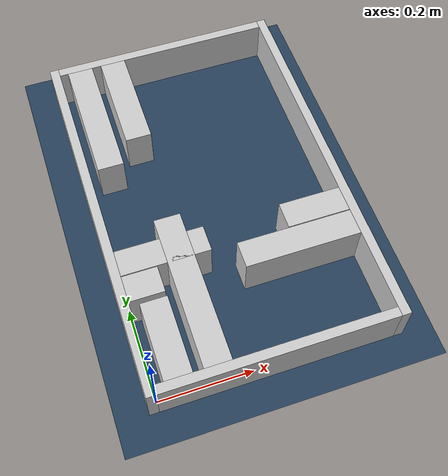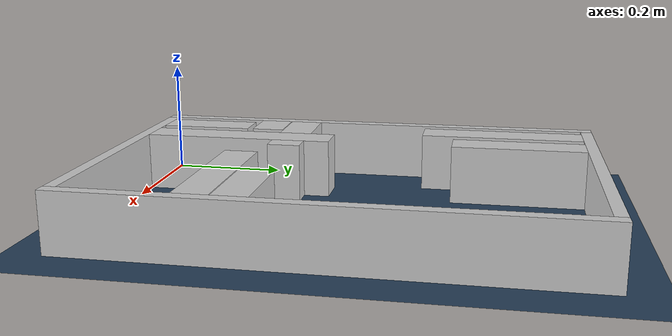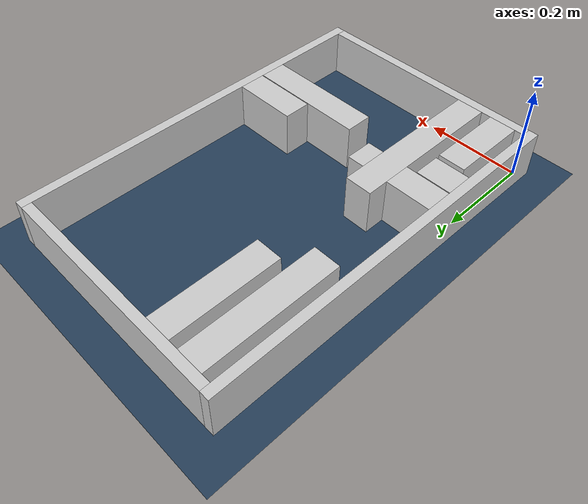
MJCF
<?xml version="1.0" ?>
<mujoco model="generated_real_template">
  <compiler angle="degree"/>
  <option timestep="0.002" integrator="implicitfast" iterations="100" cone="elliptic"/>
  <default>
    <geom density="1"/>
  </default>
  <asset>
    <texture builtin="gradient" height="3072" rgb1="0.3 0.5 0.7" rgb2="0 0 0" type="skybox" width="512"/>
    <texture builtin="checker" height="300" mark="edge" markrgb="0.8 0.8 0.8" name="groundplane" rgb1="0.2 0.3 0.4" rgb2="0.1 0.2 0.3" type="2d" width="300"/>
    <material name="groundplane" reflectance="0.2" texrepeat="5 5" texture="groundplane" texuniform="true"/>
  </asset>
  <worldbody>
    <light dir="0 0 -1" directional="true" pos="0 0 1.5"/>
    <geom name="floor" type="plane" condim="4" friction="0.5 0.005 0.001" material="groundplane" size="0 0 0.05"/>
    <body name="walls">
      <geom name="wall_boundary_left" type="box" condim="4" friction="1.0 0.005 0.0001" rgba="0.8 0.8 0.8 1" pos="-0.010000 0.387500 0.050000" euler="0 0 0.000000" size="0.010000 0.407500 0.050000"/>
      <geom name="wall_boundary_right" type="box" condim="4" friction="1.0 0.005 0.0001" rgba="0.8 0.8 0.8 1" pos="0.500000 0.387500 0.050000" euler="0 0 0.000000" size="0.010000 0.407500 0.050000"/>
      <geom name="wall_boundary_bottom" type="box" condim="4" friction="1.0 0.005 0.0001" rgba="0.8 0.8 0.8 1" pos="0.245000 -0.010000 0.050000" euler="0 0 0.000000" size="0.245000 0.010000 0.050000"/>
      <geom name="wall_boundary_top" type="box" condim="4" friction="1.0 0.005 0.0001" rgba="0.8 0.8 0.8 1" pos="0.245000 0.785000 0.050000" euler="0 0 0.000000" size="0.245000 0.010000 0.050000"/>
      <geom name="wall_inner_1_1" type="box" condim="4" friction="1.0 0.005 0.0001" rgba="0.8 0.8 0.8 1" pos="0.037416 0.201392 0.050000" euler="0 0 0.000000" size="0.037416 0.028500 0.050000"/>
      <geom name="wall_inner_1_2" type="box" condim="4" friction="1.0 0.005 0.0001" rgba="0.8 0.8 0.8 1" pos="0.365920 0.201392 0.050000" euler="0 0 0.000000" size="0.124080 0.028500 0.050000"/>
      <geom name="wall_inner_2_1" type="box" condim="4" friction="1.0 0.005 0.0001" rgba="0.8 0.8 0.8 1" pos="0.047420 0.081412 0.050000" euler="0 0 90.000000" size="0.081412 0.028500 0.050000"/>
      <geom name="wall_inner_2_2" type="box" condim="4" friction="1.0 0.005 0.0001" rgba="0.8 0.8 0.8 1" pos="0.047420 0.633028 0.050000" euler="0 0 90.000000" size="0.141972 0.028500 0.050000"/>
      <geom name="wall_inner_3_1" type="box" condim="4" friction="1.0 0.005 0.0001" rgba="0.8 0.8 0.8 1" pos="0.124887 0.166402 0.050000" euler="0 0 90.000000" size="0.166402 0.028500 0.050000"/>
      <geom name="wall_inner_3_2" type="box" condim="4" friction="1.0 0.005 0.0001" rgba="0.8 0.8 0.8 1" pos="0.124887 0.661364 0.050000" euler="0 0 90.000000" size="0.113636 0.028500 0.050000"/>
      <geom name="wall_inner_4_1" type="box" condim="4" friction="1.0 0.005 0.0001" rgba="0.8 0.8 0.8 1" pos="0.094603 0.260080 0.050000" euler="0 0 0.000000" size="0.094603 0.028500 0.050000"/>
      <geom name="wall_inner_4_2" type="box" condim="4" friction="1.0 0.005 0.0001" rgba="0.8 0.8 0.8 1" pos="0.422400 0.260080 0.050000" euler="0 0 0.000000" size="0.067600 0.028500 0.050000"/>
    </body>
  </worldbody>
</mujoco>
